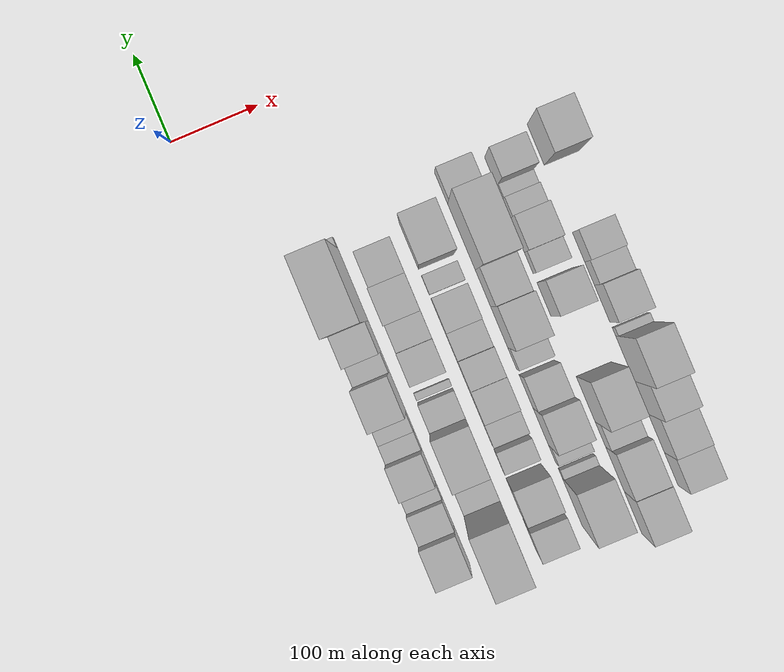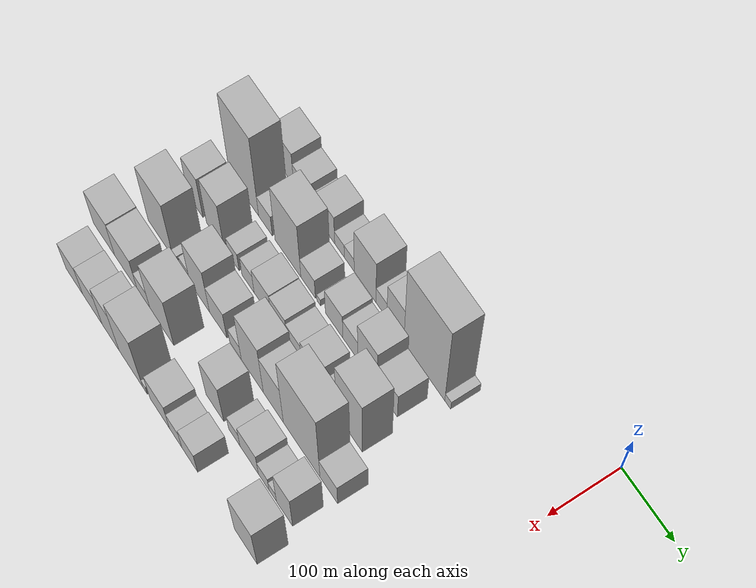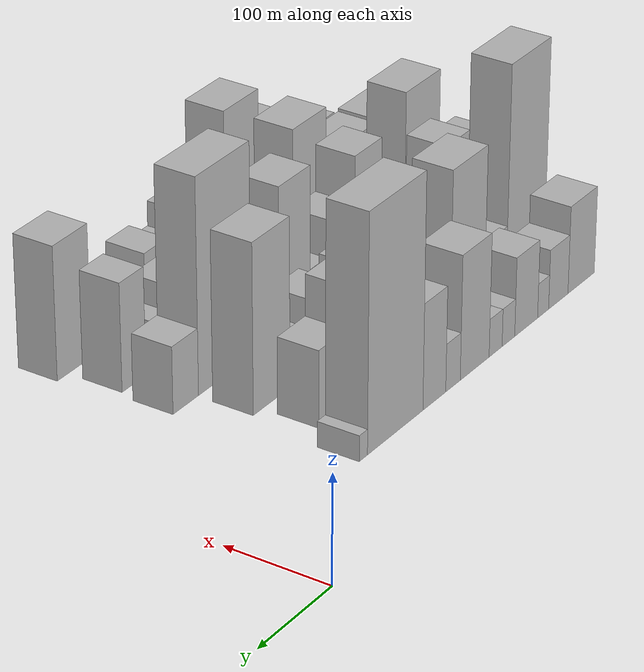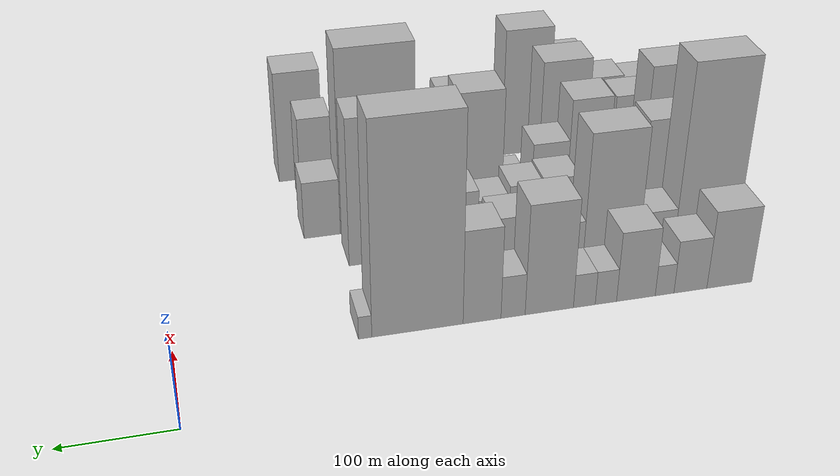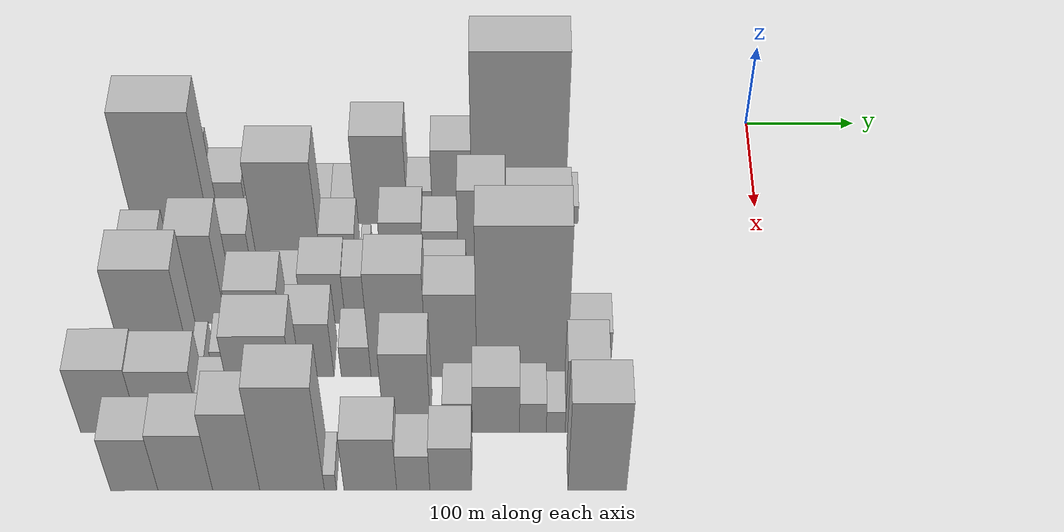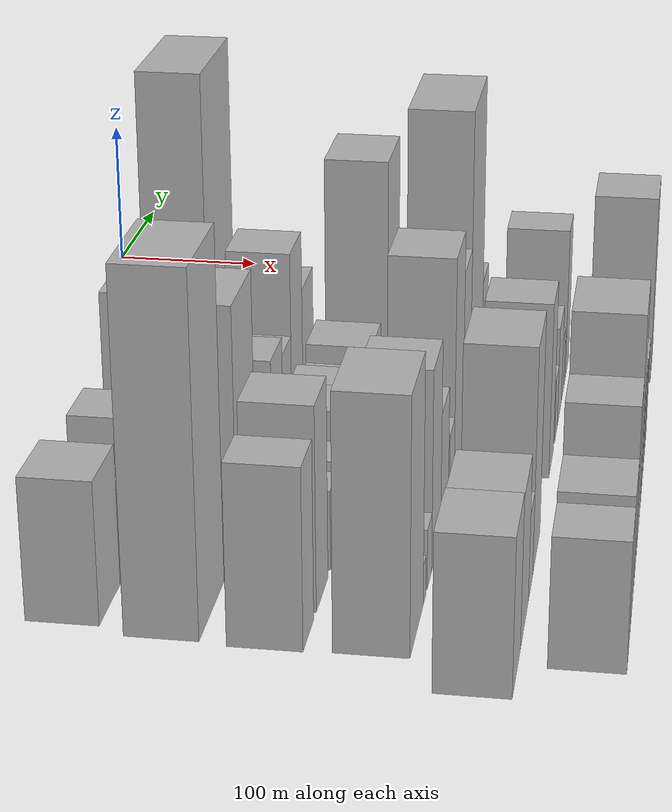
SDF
<sdf version="1.6">
 <world name="default">
  <model name="building_7">
   <static>1</static>
   <pose>100.0000 -510.2132 0 0.000000 0.000000 0.000000</pose>
   <link name="link">
    <pose>0 0 42.00 0 0 0</pose>
    <collision name="collision"><geometry><box><size>40.0000 44.9282 84.0000</size></box></geometry></collision>
    <visual name="visual">
     <cast_shadows>0</cast_shadows>
     <geometry><box><size>40.0000 44.9282 84.0000</size></box></geometry>
     <material>
      <script>
       <uri>model://HANNAS_wall/materials/scripts</uri>
       <uri>model://HANNAS_wall/materials/textures</uri>
       <name>vrc/HANNAS_wall</name>
      </script>
     </material>
    </visual>
   </link>
  </model>
  <model name="building_8">
   <static>1</static>
   <pose>100.0000 -471.4788 0 0.000000 0.000000 0.000000</pose>
   <link name="link">
    <pose>0 0 28.50 0 0 0</pose>
    <collision name="collision"><geometry><box><size>40.0000 32.5408 57.0000</size></box></geometry></collision>
    <visual name="visual">
     <cast_shadows>0</cast_shadows>
     <geometry><box><size>40.0000 32.5408 57.0000</size></box></geometry>
     <material>
      <script>
       <uri>model://HANNAS_wall/materials/scripts</uri>
       <uri>model://HANNAS_wall/materials/textures</uri>
       <name>vrc/HANNAS_wall</name>
      </script>
     </material>
    </visual>
   </link>
  </model>
  <model name="building_9">
   <static>1</static>
   <pose>100.0000 -446.0469 0 0.000000 0.000000 0.000000</pose>
   <link name="link">
    <pose>0 0 16.50 0 0 0</pose>
    <collision name="collision"><geometry><box><size>40.0000 18.3229 33.0000</size></box></geometry></collision>
    <visual name="visual">
     <cast_shadows>0</cast_shadows>
     <geometry><box><size>40.0000 18.3229 33.0000</size></box></geometry>
     <material>
      <script>
       <uri>model://HANNAS_wall/materials/scripts</uri>
       <uri>model://HANNAS_wall/materials/textures</uri>
       <name>vrc/HANNAS_wall</name>
      </script>
     </material>
    </visual>
   </link>
  </model>
  <model name="building_10">
   <static>1</static>
   <pose>100.0000 -418.1166 0 0.000000 0.000000 0.000000</pose>
   <link name="link">
    <pose>0 0 37.50 0 0 0</pose>
    <collision name="collision"><geometry><box><size>40.0000 37.5377 75.0000</size></box></geometry></collision>
    <visual name="visual">
     <cast_shadows>0</cast_shadows>
     <geometry><box><size>40.0000 37.5377 75.0000</size></box></geometry>
     <material>
      <script>
       <uri>model://HANNAS_wall/materials/scripts</uri>
       <uri>model://HANNAS_wall/materials/textures</uri>
       <name>vrc/HANNAS_wall</name>
      </script>
     </material>
    </visual>
   </link>
  </model>
  <model name="building_11">
   <static>1</static>
   <pose>100.0000 -389.1185 0 0.000000 0.000000 0.000000</pose>
   <link name="link">
    <pose>0 0 18.00 0 0 0</pose>
    <collision name="collision"><geometry><box><size>40.0000 20.4583 36.0000</size></box></geometry></collision>
    <visual name="visual">
     <cast_shadows>0</cast_shadows>
     <geometry><box><size>40.0000 20.4583 36.0000</size></box></geometry>
     <material>
      <script>
       <uri>model://HANNAS_wall/materials/scripts</uri>
       <uri>model://HANNAS_wall/materials/textures</uri>
       <name>vrc/HANNAS_wall</name>
      </script>
     </material>
    </visual>
   </link>
  </model>
  <model name="building_12">
   <static>1</static>
   <pose>100.0000 -368.4533 0 0.000000 0.000000 0.000000</pose>
   <link name="link">
    <pose>0 0 18.00 0 0 0</pose>
    <collision name="collision"><geometry><box><size>40.0000 20.8721 36.0000</size></box></geometry></collision>
    <visual name="visual">
     <cast_shadows>0</cast_shadows>
     <geometry><box><size>40.0000 20.8721 36.0000</size></box></geometry>
     <material>
      <script>
       <uri>model://HANNAS_wall/materials/scripts</uri>
       <uri>model://HANNAS_wall/materials/textures</uri>
       <name>vrc/HANNAS_wall</name>
      </script>
     </material>
    </visual>
   </link>
  </model>
  <model name="building_13">
   <static>1</static>
   <pose>100.0000 -335.2118 0 0.000000 0.000000 0.000000</pose>
   <link name="link">
    <pose>0 0 58.50 0 0 0</pose>
    <collision name="collision"><geometry><box><size>40.0000 45.6110 117.0000</size></box></geometry></collision>
    <visual name="visual">
     <cast_shadows>0</cast_shadows>
     <geometry><box><size>40.0000 45.6110 117.0000</size></box></geometry>
     <material>
      <script>
       <uri>model://HANNAS_wall/materials/scripts</uri>
       <uri>model://HANNAS_wall/materials/textures</uri>
       <name>vrc/HANNAS_wall</name>
      </script>
     </material>
    </visual>
   </link>
  </model>
  <model name="building_14">
   <static>1</static>
   <pose>100.0000 -301.1327 0 0.000000 0.000000 0.000000</pose>
   <link name="link">
    <pose>0 0 22.50 0 0 0</pose>
    <collision name="collision"><geometry><box><size>40.0000 22.5473 45.0000</size></box></geometry></collision>
    <visual name="visual">
     <cast_shadows>0</cast_shadows>
     <geometry><box><size>40.0000 22.5473 45.0000</size></box></geometry>
     <material>
      <script>
       <uri>model://HANNAS_wall/materials/scripts</uri>
       <uri>model://HANNAS_wall/materials/textures</uri>
       <name>vrc/HANNAS_wall</name>
      </script>
     </material>
    </visual>
   </link>
  </model>
  <model name="building_15">
   <static>1</static>
   <pose>100.0000 -272.3482 0 0.000000 0.000000 0.000000</pose>
   <link name="link">
    <pose>0 0 49.50 0 0 0</pose>
    <collision name="collision"><geometry><box><size>40.0000 35.0216 99.0000</size></box></geometry></collision>
    <visual name="visual">
     <cast_shadows>0</cast_shadows>
     <geometry><box><size>40.0000 35.0216 99.0000</size></box></geometry>
     <material>
      <script>
       <uri>model://HANNAS_wall/materials/scripts</uri>
       <uri>model://HANNAS_wall/materials/textures</uri>
       <name>vrc/HANNAS_wall</name>
      </script>
     </material>
    </visual>
   </link>
  </model>
  <model name="building_16">
   <static>1</static>
   <pose>100.0000 -213.4402 0 0.000000 0.000000 0.000000</pose>
   <link name="link">
    <pose>0 0 109.50 0 0 0</pose>
    <collision name="collision"><geometry><box><size>40.0000 82.7944 219.0000</size></box></geometry></collision>
    <visual name="visual">
     <cast_shadows>0</cast_shadows>
     <geometry><box><size>40.0000 82.7944 219.0000</size></box></geometry>
     <material>
      <script>
       <uri>model://HANNAS_wall/materials/scripts</uri>
       <uri>model://HANNAS_wall/materials/textures</uri>
       <name>vrc/HANNAS_wall</name>
      </script>
     </material>
    </visual>
   </link>
  </model>
  <model name="building_17">
   <static>1</static>
   <pose>100.0000 -166.0867 0 0.000000 0.000000 0.000000</pose>
   <link name="link">
    <pose>0 0 12.00 0 0 0</pose>
    <collision name="collision"><geometry><box><size>40.0000 11.9127 24.0000</size></box></geometry></collision>
    <visual name="visual">
     <cast_shadows>0</cast_shadows>
     <geometry><box><size>40.0000 11.9127 24.0000</size></box></geometry>
     <material>
      <script>
       <uri>model://HANNAS_wall/materials/scripts</uri>
       <uri>model://HANNAS_wall/materials/textures</uri>
       <name>vrc/HANNAS_wall</name>
      </script>
     </material>
    </visual>
   </link>
  </model>
  <model name="building_61">
   <static>1</static>
   <pose>155.0000 -508.8457 0 0.000000 0.000000 0.000000</pose>
   <link name="link">
    <pose>0 0 103.50 0 0 0</pose>
    <collision name="collision"><geometry><box><size>40.0000 64.2431 207.0000</size></box></geometry></collision>
    <visual name="visual">
     <cast_shadows>0</cast_shadows>
     <geometry><box><size>40.0000 64.2431 207.0000</size></box></geometry>
     <material>
      <script>
       <uri>model://HANNAS_wall/materials/scripts</uri>
       <uri>model://HANNAS_wall/materials/textures</uri>
       <name>vrc/HANNAS_wall</name>
      </script>
     </material>
    </visual>
   </link>
  </model>
  <model name="building_62">
   <static>1</static>
   <pose>155.0000 -461.8605 0 0.000000 0.000000 0.000000</pose>
   <link name="link">
    <pose>0 0 27.00 0 0 0</pose>
    <collision name="collision"><geometry><box><size>40.0000 29.7274 54.0000</size></box></geometry></collision>
    <visual name="visual">
     <cast_shadows>0</cast_shadows>
     <geometry><box><size>40.0000 29.7274 54.0000</size></box></geometry>
     <material>
      <script>
       <uri>model://HANNAS_wall/materials/scripts</uri>
       <uri>model://HANNAS_wall/materials/textures</uri>
       <name>vrc/HANNAS_wall</name>
      </script>
     </material>
    </visual>
   </link>
  </model>
  <model name="building_63">
   <static>1</static>
   <pose>155.0000 -413.3014 0 0.000000 0.000000 0.000000</pose>
   <link name="link">
    <pose>0 0 73.50 0 0 0</pose>
    <collision name="collision"><geometry><box><size>40.0000 55.3907 147.0000</size></box></geometry></collision>
    <visual name="visual">
     <cast_shadows>0</cast_shadows>
     <geometry><box><size>40.0000 55.3907 147.0000</size></box></geometry>
     <material>
      <script>
       <uri>model://HANNAS_wall/materials/scripts</uri>
       <uri>model://HANNAS_wall/materials/textures</uri>
       <name>vrc/HANNAS_wall</name>
      </script>
     </material>
    </visual>
   </link>
  </model>
  <model name="building_64">
   <static>1</static>
   <pose>155.0000 -370.1292 0 0.000000 0.000000 0.000000</pose>
   <link name="link">
    <pose>0 0 27.00 0 0 0</pose>
    <collision name="collision"><geometry><box><size>40.0000 30.9537 54.0000</size></box></geometry></collision>
    <visual name="visual">
     <cast_shadows>0</cast_shadows>
     <geometry><box><size>40.0000 30.9537 54.0000</size></box></geometry>
     <material>
      <script>
       <uri>model://HANNAS_wall/materials/scripts</uri>
       <uri>model://HANNAS_wall/materials/textures</uri>
       <name>vrc/HANNAS_wall</name>
      </script>
     </material>
    </visual>
   </link>
  </model>
  <model name="building_65">
   <static>1</static>
   <pose>155.0000 -347.6323 0 0.000000 0.000000 0.000000</pose>
   <link name="link">
    <pose>0 0 9.00 0 0 0</pose>
    <collision name="collision"><geometry><box><size>40.0000 8.0401 18.0000</size></box></geometry></collision>
    <visual name="visual">
     <cast_shadows>0</cast_shadows>
     <geometry><box><size>40.0000 8.0401 18.0000</size></box></geometry>
     <material>
      <script>
       <uri>model://HANNAS_wall/materials/scripts</uri>
       <uri>model://HANNAS_wall/materials/textures</uri>
       <name>vrc/HANNAS_wall</name>
      </script>
     </material>
    </visual>
   </link>
  </model>
  <model name="building_66">
   <static>1</static>
   <pose>155.0000 -315.2518 0 0.000000 0.000000 0.000000</pose>
   <link name="link">
    <pose>0 0 34.50 0 0 0</pose>
    <collision name="collision"><geometry><box><size>40.0000 36.7208 69.0000</size></box></geometry></collision>
    <visual name="visual">
     <cast_shadows>0</cast_shadows>
     <geometry><box><size>40.0000 36.7208 69.0000</size></box></geometry>
     <material>
      <script>
       <uri>model://HANNAS_wall/materials/scripts</uri>
       <uri>model://HANNAS_wall/materials/textures</uri>
       <name>vrc/HANNAS_wall</name>
      </script>
     </material>
    </visual>
   </link>
  </model>
  <model name="building_67">
   <static>1</static>
   <pose>155.0000 -281.4649 0 0.000000 0.000000 0.000000</pose>
   <link name="link">
    <pose>0 0 28.50 0 0 0</pose>
    <collision name="collision"><geometry><box><size>40.0000 30.8529 57.0000</size></box></geometry></collision>
    <visual name="visual">
     <cast_shadows>0</cast_shadows>
     <geometry><box><size>40.0000 30.8529 57.0000</size></box></geometry>
     <material>
      <script>
       <uri>model://HANNAS_wall/materials/scripts</uri>
       <uri>model://HANNAS_wall/materials/textures</uri>
       <name>vrc/HANNAS_wall</name>
      </script>
     </material>
    </visual>
   </link>
  </model>
  <model name="building_68">
   <static>1</static>
   <pose>155.0000 -245.8051 0 0.000000 0.000000 0.000000</pose>
   <link name="link">
    <pose>0 0 55.50 0 0 0</pose>
    <collision name="collision"><geometry><box><size>40.0000 40.4668 111.0000</size></box></geometry></collision>
    <visual name="visual">
     <cast_shadows>0</cast_shadows>
     <geometry><box><size>40.0000 40.4668 111.0000</size></box></geometry>
     <material>
      <script>
       <uri>model://HANNAS_wall/materials/scripts</uri>
       <uri>model://HANNAS_wall/materials/textures</uri>
       <name>vrc/HANNAS_wall</name>
      </script>
     </material>
    </visual>
   </link>
  </model>
  <model name="building_69">
   <static>1</static>
   <pose>155.0000 -205.2979 0 0.000000 0.000000 0.000000</pose>
   <link name="link">
    <pose>0 0 36.00 0 0 0</pose>
    <collision name="collision"><geometry><box><size>40.0000 40.5476 72.0000</size></box></geometry></collision>
    <visual name="visual">
     <cast_shadows>0</cast_shadows>
     <geometry><box><size>40.0000 40.5476 72.0000</size></box></geometry>
     <material>
      <script>
       <uri>model://HANNAS_wall/materials/scripts</uri>
       <uri>model://HANNAS_wall/materials/textures</uri>
       <name>vrc/HANNAS_wall</name>
      </script>
     </material>
    </visual>
   </link>
  </model>
  <model name="building_109">
   <static>1</static>
   <pose>210.0000 -527.1271 0 0.000000 0.000000 0.000000</pose>
   <link name="link">
    <pose>0 0 52.50 0 0 0</pose>
    <collision name="collision"><geometry><box><size>40.0000 32.8717 105.0000</size></box></geometry></collision>
    <visual name="visual">
     <cast_shadows>0</cast_shadows>
     <geometry><box><size>40.0000 32.8717 105.0000</size></box></geometry>
     <material>
      <script>
       <uri>model://HANNAS_wall/materials/scripts</uri>
       <uri>model://HANNAS_wall/materials/textures</uri>
       <name>vrc/HANNAS_wall</name>
      </script>
     </material>
    </visual>
   </link>
  </model>
  <model name="building_110">
   <static>1</static>
   <pose>210.0000 -483.5095 0 0.000000 0.000000 0.000000</pose>
   <link name="link">
    <pose>0 0 60.00 0 0 0</pose>
    <collision name="collision"><geometry><box><size>40.0000 38.3635 120.0000</size></box></geometry></collision>
    <visual name="visual">
     <cast_shadows>0</cast_shadows>
     <geometry><box><size>40.0000 38.3635 120.0000</size></box></geometry>
     <material>
      <script>
       <uri>model://HANNAS_wall/materials/scripts</uri>
       <uri>model://HANNAS_wall/materials/textures</uri>
       <name>vrc/HANNAS_wall</name>
      </script>
     </material>
    </visual>
   </link>
  </model>
  <model name="building_111">
   <static>1</static>
   <pose>210.0000 -443.2050 0 0.000000 0.000000 0.000000</pose>
   <link name="link">
    <pose>0 0 24.00 0 0 0</pose>
    <collision name="collision"><geometry><box><size>40.0000 24.2456 48.0000</size></box></geometry></collision>
    <visual name="visual">
     <cast_shadows>0</cast_shadows>
     <geometry><box><size>40.0000 24.2456 48.0000</size></box></geometry>
     <material>
      <script>
       <uri>model://HANNAS_wall/materials/scripts</uri>
       <uri>model://HANNAS_wall/materials/textures</uri>
       <name>vrc/HANNAS_wall</name>
      </script>
     </material>
    </visual>
   </link>
  </model>
  <model name="building_112">
   <static>1</static>
   <pose>210.0000 -411.8444 0 0.000000 0.000000 0.000000</pose>
   <link name="link">
    <pose>0 0 25.50 0 0 0</pose>
    <collision name="collision"><geometry><box><size>40.0000 26.4756 51.0000</size></box></geometry></collision>
    <visual name="visual">
     <cast_shadows>0</cast_shadows>
     <geometry><box><size>40.0000 26.4756 51.0000</size></box></geometry>
     <material>
      <script>
       <uri>model://HANNAS_wall/materials/scripts</uri>
       <uri>model://HANNAS_wall/materials/textures</uri>
       <name>vrc/HANNAS_wall</name>
      </script>
     </material>
    </visual>
   </link>
  </model>
  <model name="building_113">
   <static>1</static>
   <pose>210.0000 -380.3695 0 0.000000 0.000000 0.000000</pose>
   <link name="link">
    <pose>0 0 34.50 0 0 0</pose>
    <collision name="collision"><geometry><box><size>40.0000 36.4743 69.0000</size></box></geometry></collision>
    <visual name="visual">
     <cast_shadows>0</cast_shadows>
     <geometry><box><size>40.0000 36.4743 69.0000</size></box></geometry>
     <material>
      <script>
       <uri>model://HANNAS_wall/materials/scripts</uri>
       <uri>model://HANNAS_wall/materials/textures</uri>
       <name>vrc/HANNAS_wall</name>
      </script>
     </material>
    </visual>
   </link>
  </model>
  <model name="building_114">
   <static>1</static>
   <pose>210.0000 -345.5111 0 0.000000 0.000000 0.000000</pose>
   <link name="link">
    <pose>0 0 33.00 0 0 0</pose>
    <collision name="collision"><geometry><box><size>40.0000 33.2425 66.0000</size></box></geometry></collision>
    <visual name="visual">
     <cast_shadows>0</cast_shadows>
     <geometry><box><size>40.0000 33.2425 66.0000</size></box></geometry>
     <material>
      <script>
       <uri>model://HANNAS_wall/materials/scripts</uri>
       <uri>model://HANNAS_wall/materials/textures</uri>
       <name>vrc/HANNAS_wall</name>
      </script>
     </material>
    </visual>
   </link>
  </model>
  <model name="building_115">
   <static>1</static>
   <pose>210.0000 -313.5242 0 0.000000 0.000000 0.000000</pose>
   <link name="link">
    <pose>0 0 27.00 0 0 0</pose>
    <collision name="collision"><geometry><box><size>40.0000 30.7312 54.0000</size></box></geometry></collision>
    <visual name="visual">
     <cast_shadows>0</cast_shadows>
     <geometry><box><size>40.0000 30.7312 54.0000</size></box></geometry>
     <material>
      <script>
       <uri>model://HANNAS_wall/materials/scripts</uri>
       <uri>model://HANNAS_wall/materials/textures</uri>
       <name>vrc/HANNAS_wall</name>
      </script>
     </material>
    </visual>
   </link>
  </model>
  <model name="building_116">
   <static>1</static>
   <pose>210.0000 -278.5037 0 0.000000 0.000000 0.000000</pose>
   <link name="link">
    <pose>0 0 33.00 0 0 0</pose>
    <collision name="collision"><geometry><box><size>40.0000 39.3099 66.0000</size></box></geometry></collision>
    <visual name="visual">
     <cast_shadows>0</cast_shadows>
     <geometry><box><size>40.0000 39.3099 66.0000</size></box></geometry>
     <material>
      <script>
       <uri>model://HANNAS_wall/materials/scripts</uri>
       <uri>model://HANNAS_wall/materials/textures</uri>
       <name>vrc/HANNAS_wall</name>
      </script>
     </material>
    </visual>
   </link>
  </model>
  <model name="building_117">
   <static>1</static>
   <pose>210.0000 -244.0748 0 0.000000 0.000000 0.000000</pose>
   <link name="link">
    <pose>0 0 21.00 0 0 0</pose>
    <collision name="collision"><geometry><box><size>40.0000 21.5480 42.0000</size></box></geometry></collision>
    <visual name="visual">
     <cast_shadows>0</cast_shadows>
     <geometry><box><size>40.0000 21.5480 42.0000</size></box></geometry>
     <material>
      <script>
       <uri>model://HANNAS_wall/materials/scripts</uri>
       <uri>model://HANNAS_wall/materials/textures</uri>
       <name>vrc/HANNAS_wall</name>
      </script>
     </material>
    </visual>
   </link>
  </model>
  <model name="building_118">
   <static>1</static>
   <pose>210.0000 -198.7493 0 0.000000 0.000000 0.000000</pose>
   <link name="link">
    <pose>0 0 79.50 0 0 0</pose>
    <collision name="collision"><geometry><box><size>40.0000 53.1029 159.0000</size></box></geometry></collision>
    <visual name="visual">
     <cast_shadows>0</cast_shadows>
     <geometry><box><size>40.0000 53.1029 159.0000</size></box></geometry>
     <material>
      <script>
       <uri>model://HANNAS_wall/materials/scripts</uri>
       <uri>model://HANNAS_wall/materials/textures</uri>
       <name>vrc/HANNAS_wall</name>
      </script>
     </material>
    </visual>
   </link>
  </model>
  <model name="building_165">
   <static>1</static>
   <pose>265.0000 -514.4767 0 0.000000 0.000000 0.000000</pose>
   <link name="link">
    <pose>0 0 73.50 0 0 0</pose>
    <collision name="collision"><geometry><box><size>40.0000 55.5013 147.0000</size></box></geometry></collision>
    <visual name="visual">
     <cast_shadows>0</cast_shadows>
     <geometry><box><size>40.0000 55.5013 147.0000</size></box></geometry>
     <material>
      <script>
       <uri>model://HANNAS_wall/materials/scripts</uri>
       <uri>model://HANNAS_wall/materials/textures</uri>
       <name>vrc/HANNAS_wall</name>
      </script>
     </material>
    </visual>
   </link>
  </model>
  <model name="building_166">
   <static>1</static>
   <pose>265.0000 -481.2892 0 0.000000 0.000000 0.000000</pose>
   <link name="link">
    <pose>0 0 12.00 0 0 0</pose>
    <collision name="collision"><geometry><box><size>40.0000 10.8736 24.0000</size></box></geometry></collision>
    <visual name="visual">
     <cast_shadows>0</cast_shadows>
     <geometry><box><size>40.0000 10.8736 24.0000</size></box></geometry>
     <material>
      <script>
       <uri>model://HANNAS_wall/materials/scripts</uri>
       <uri>model://HANNAS_wall/materials/textures</uri>
       <name>vrc/HANNAS_wall</name>
      </script>
     </material>
    </visual>
   </link>
  </model>
  <model name="building_167">
   <static>1</static>
   <pose>265.0000 -459.4296 0 0.000000 0.000000 0.000000</pose>
   <link name="link">
    <pose>0 0 18.00 0 0 0</pose>
    <collision name="collision"><geometry><box><size>40.0000 20.8456 36.0000</size></box></geometry></collision>
    <visual name="visual">
     <cast_shadows>0</cast_shadows>
     <geometry><box><size>40.0000 20.8456 36.0000</size></box></geometry>
     <material>
      <script>
       <uri>model://HANNAS_wall/materials/scripts</uri>
       <uri>model://HANNAS_wall/materials/textures</uri>
       <name>vrc/HANNAS_wall</name>
      </script>
     </material>
    </visual>
   </link>
  </model>
  <model name="building_168">
   <static>1</static>
   <pose>265.0000 -427.7121 0 0.000000 0.000000 0.000000</pose>
   <link name="link">
    <pose>0 0 60.00 0 0 0</pose>
    <collision name="collision"><geometry><box><size>40.0000 42.5895 120.0000</size></box></geometry></collision>
    <visual name="visual">
     <cast_shadows>0</cast_shadows>
     <geometry><box><size>40.0000 42.5895 120.0000</size></box></geometry>
     <material>
      <script>
       <uri>model://HANNAS_wall/materials/scripts</uri>
       <uri>model://HANNAS_wall/materials/textures</uri>
       <name>vrc/HANNAS_wall</name>
      </script>
     </material>
    </visual>
   </link>
  </model>
  <model name="building_169">
   <static>1</static>
   <pose>265.0000 -387.6341 0 0.000000 0.000000 0.000000</pose>
   <link name="link">
    <pose>0 0 37.50 0 0 0</pose>
    <collision name="collision"><geometry><box><size>40.0000 37.5665 75.0000</size></box></geometry></collision>
    <visual name="visual">
     <cast_shadows>0</cast_shadows>
     <geometry><box><size>40.0000 37.5665 75.0000</size></box></geometry>
     <material>
      <script>
       <uri>model://HANNAS_wall/materials/scripts</uri>
       <uri>model://HANNAS_wall/materials/textures</uri>
       <name>vrc/HANNAS_wall</name>
      </script>
     </material>
    </visual>
   </link>
  </model>
  <model name="building_170">
   <static>1</static>
   <pose>265.0000 -350.3621 0 0.000000 0.000000 0.000000</pose>
   <link name="link">
    <pose>0 0 21.00 0 0 0</pose>
    <collision name="collision"><geometry><box><size>40.0000 24.9775 42.0000</size></box></geometry></collision>
    <visual name="visual">
     <cast_shadows>0</cast_shadows>
     <geometry><box><size>40.0000 24.9775 42.0000</size></box></geometry>
     <material>
      <script>
       <uri>model://HANNAS_wall/materials/scripts</uri>
       <uri>model://HANNAS_wall/materials/textures</uri>
       <name>vrc/HANNAS_wall</name>
      </script>
     </material>
    </visual>
   </link>
  </model>
  <model name="building_171">
   <static>1</static>
   <pose>265.0000 -314.4730 0 0.000000 0.000000 0.000000</pose>
   <link name="link">
    <pose>0 0 70.50 0 0 0</pose>
    <collision name="collision"><geometry><box><size>40.0000 46.8007 141.0000</size></box></geometry></collision>
    <visual name="visual">
     <cast_shadows>0</cast_shadows>
     <geometry><box><size>40.0000 46.8007 141.0000</size></box></geometry>
     <material>
      <script>
       <uri>model://HANNAS_wall/materials/scripts</uri>
       <uri>model://HANNAS_wall/materials/textures</uri>
       <name>vrc/HANNAS_wall</name>
      </script>
     </material>
    </visual>
   </link>
  </model>
  <model name="building_172">
   <static>1</static>
   <pose>265.0000 -270.1294 0 0.000000 0.000000 0.000000</pose>
   <link name="link">
    <pose>0 0 57.00 0 0 0</pose>
    <collision name="collision"><geometry><box><size>40.0000 41.8864 114.0000</size></box></geometry></collision>
    <visual name="visual">
     <cast_shadows>0</cast_shadows>
     <geometry><box><size>40.0000 41.8864 114.0000</size></box></geometry>
     <material>
      <script>
       <uri>model://HANNAS_wall/materials/scripts</uri>
       <uri>model://HANNAS_wall/materials/textures</uri>
       <name>vrc/HANNAS_wall</name>
      </script>
     </material>
    </visual>
   </link>
  </model>
  <model name="building_173">
   <static>1</static>
   <pose>265.0000 -211.3545 0 0.000000 0.000000 0.000000</pose>
   <link name="link">
    <pose>0 0 100.50 0 0 0</pose>
    <collision name="collision"><geometry><box><size>40.0000 75.6633 201.0000</size></box></geometry></collision>
    <visual name="visual">
     <cast_shadows>0</cast_shadows>
     <geometry><box><size>40.0000 75.6633 201.0000</size></box></geometry>
     <material>
      <script>
       <uri>model://HANNAS_wall/materials/scripts</uri>
       <uri>model://HANNAS_wall/materials/textures</uri>
       <name>vrc/HANNAS_wall</name>
      </script>
     </material>
    </visual>
   </link>
  </model>
  <model name="building_174">
   <static>1</static>
   <pose>265.0000 -155.5771 0 0.000000 0.000000 0.000000</pose>
   <link name="link">
    <pose>0 0 31.50 0 0 0</pose>
    <collision name="collision"><geometry><box><size>40.0000 35.8916 63.0000</size></box></geometry></collision>
    <visual name="visual">
     <cast_shadows>0</cast_shadows>
     <geometry><box><size>40.0000 35.8916 63.0000</size></box></geometry>
     <material>
      <script>
       <uri>model://HANNAS_wall/materials/scripts</uri>
       <uri>model://HANNAS_wall/materials/textures</uri>
       <name>vrc/HANNAS_wall</name>
      </script>
     </material>
    </visual>
   </link>
  </model>
  <model name="building_212">
   <static>1</static>
   <pose>320.0000 -549.5898 0 0.000000 0.000000 0.000000</pose>
   <link name="link">
    <pose>0 0 45.00 0 0 0</pose>
    <collision name="collision"><geometry><box><size>40.0000 48.4234 90.0000</size></box></geometry></collision>
    <visual name="visual">
     <cast_shadows>0</cast_shadows>
     <geometry><box><size>40.0000 48.4234 90.0000</size></box></geometry>
     <material>
      <script>
       <uri>model://HANNAS_wall/materials/scripts</uri>
       <uri>model://HANNAS_wall/materials/textures</uri>
       <name>vrc/HANNAS_wall</name>
      </script>
     </material>
    </visual>
   </link>
  </model>
  <model name="building_213">
   <static>1</static>
   <pose>320.0000 -499.9840 0 0.000000 0.000000 0.000000</pose>
   <link name="link">
    <pose>0 0 43.50 0 0 0</pose>
    <collision name="collision"><geometry><box><size>40.0000 50.7882 87.0000</size></box></geometry></collision>
    <visual name="visual">
     <cast_shadows>0</cast_shadows>
     <geometry><box><size>40.0000 50.7882 87.0000</size></box></geometry>
     <material>
      <script>
       <uri>model://HANNAS_wall/materials/scripts</uri>
       <uri>model://HANNAS_wall/materials/textures</uri>
       <name>vrc/HANNAS_wall</name>
      </script>
     </material>
    </visual>
   </link>
  </model>
  <model name="building_214">
   <static>1</static>
   <pose>320.0000 -460.1326 0 0.000000 0.000000 0.000000</pose>
   <link name="link">
    <pose>0 0 25.50 0 0 0</pose>
    <collision name="collision"><geometry><box><size>40.0000 28.9145 51.0000</size></box></geometry></collision>
    <visual name="visual">
     <cast_shadows>0</cast_shadows>
     <geometry><box><size>40.0000 28.9145 51.0000</size></box></geometry>
     <material>
      <script>
       <uri>model://HANNAS_wall/materials/scripts</uri>
       <uri>model://HANNAS_wall/materials/textures</uri>
       <name>vrc/HANNAS_wall</name>
      </script>
     </material>
    </visual>
   </link>
  </model>
  <model name="building_215">
   <static>1</static>
   <pose>320.0000 -419.7920 0 0.000000 0.000000 0.000000</pose>
   <link name="link">
    <pose>0 0 67.50 0 0 0</pose>
    <collision name="collision"><geometry><box><size>40.0000 51.7668 135.0000</size></box></geometry></collision>
    <visual name="visual">
     <cast_shadows>0</cast_shadows>
     <geometry><box><size>40.0000 51.7668 135.0000</size></box></geometry>
     <material>
      <script>
       <uri>model://HANNAS_wall/materials/scripts</uri>
       <uri>model://HANNAS_wall/materials/textures</uri>
       <name>vrc/HANNAS_wall</name>
      </script>
     </material>
    </visual>
   </link>
  </model>
  <model name="building_216">
   <static>1</static>
   <pose>320.0000 -305.5341 0 0.000000 0.000000 0.000000</pose>
   <link name="link">
    <pose>0 0 55.50 0 0 0</pose>
    <collision name="collision"><geometry><box><size>40.0000 38.2497 111.0000</size></box></geometry></collision>
    <visual name="visual">
     <cast_shadows>0</cast_shadows>
     <geometry><box><size>40.0000 38.2497 111.0000</size></box></geometry>
     <material>
      <script>
       <uri>model://HANNAS_wall/materials/scripts</uri>
       <uri>model://HANNAS_wall/materials/textures</uri>
       <name>vrc/HANNAS_wall</name>
      </script>
     </material>
    </visual>
   </link>
  </model>
  <model name="building_217">
   <static>1</static>
   <pose>320.0000 -264.3094 0 0.000000 0.000000 0.000000</pose>
   <link name="link">
    <pose>0 0 21.00 0 0 0</pose>
    <collision name="collision"><geometry><box><size>40.0000 24.1997 42.0000</size></box></geometry></collision>
    <visual name="visual">
     <cast_shadows>0</cast_shadows>
     <geometry><box><size>40.0000 24.1997 42.0000</size></box></geometry>
     <material>
      <script>
       <uri>model://HANNAS_wall/materials/scripts</uri>
       <uri>model://HANNAS_wall/materials/textures</uri>
       <name>vrc/HANNAS_wall</name>
      </script>
     </material>
    </visual>
   </link>
  </model>
  <model name="building_218">
   <static>1</static>
   <pose>320.0000 -232.9948 0 0.000000 0.000000 0.000000</pose>
   <link name="link">
    <pose>0 0 33.00 0 0 0</pose>
    <collision name="collision"><geometry><box><size>40.0000 38.4295 66.0000</size></box></geometry></collision>
    <visual name="visual">
     <cast_shadows>0</cast_shadows>
     <geometry><box><size>40.0000 38.4295 66.0000</size></box></geometry>
     <material>
      <script>
       <uri>model://HANNAS_wall/materials/scripts</uri>
       <uri>model://HANNAS_wall/materials/textures</uri>
       <name>vrc/HANNAS_wall</name>
      </script>
     </material>
    </visual>
   </link>
  </model>
  <model name="building_219">
   <static>1</static>
   <pose>320.0000 -202.8050 0 0.000000 0.000000 0.000000</pose>
   <link name="link">
    <pose>0 0 21.00 0 0 0</pose>
    <collision name="collision"><geometry><box><size>40.0000 21.9502 42.0000</size></box></geometry></collision>
    <visual name="visual">
     <cast_shadows>0</cast_shadows>
     <geometry><box><size>40.0000 21.9502 42.0000</size></box></geometry>
     <material>
      <script>
       <uri>model://HANNAS_wall/materials/scripts</uri>
       <uri>model://HANNAS_wall/materials/textures</uri>
       <name>vrc/HANNAS_wall</name>
      </script>
     </material>
    </visual>
   </link>
  </model>
  <model name="building_220">
   <static>1</static>
   <pose>320.0000 -184.1063 0 0.000000 0.000000 0.000000</pose>
   <link name="link">
    <pose>0 0 15.00 0 0 0</pose>
    <collision name="collision"><geometry><box><size>40.0000 15.4472 30.0000</size></box></geometry></collision>
    <visual name="visual">
     <cast_shadows>0</cast_shadows>
     <geometry><box><size>40.0000 15.4472 30.0000</size></box></geometry>
     <material>
      <script>
       <uri>model://HANNAS_wall/materials/scripts</uri>
       <uri>model://HANNAS_wall/materials/textures</uri>
       <name>vrc/HANNAS_wall</name>
      </script>
     </material>
    </visual>
   </link>
  </model>
  <model name="building_221">
   <static>1</static>
   <pose>320.0000 -159.7665 0 0.000000 0.000000 0.000000</pose>
   <link name="link">
    <pose>0 0 51.00 0 0 0</pose>
    <collision name="collision"><geometry><box><size>40.0000 33.2323 102.0000</size></box></geometry></collision>
    <visual name="visual">
     <cast_shadows>0</cast_shadows>
     <geometry><box><size>40.0000 33.2323 102.0000</size></box></geometry>
     <material>
      <script>
       <uri>model://HANNAS_wall/materials/scripts</uri>
       <uri>model://HANNAS_wall/materials/textures</uri>
       <name>vrc/HANNAS_wall</name>
      </script>
     </material>
    </visual>
   </link>
  </model>
  <model name="building_259">
   <static>1</static>
   <pose>375.0000 -522.9317 0 0.000000 0.000000 0.000000</pose>
   <link name="link">
    <pose>0 0 37.50 0 0 0</pose>
    <collision name="collision"><geometry><box><size>40.0000 38.0080 75.0000</size></box></geometry></collision>
    <visual name="visual">
     <cast_shadows>0</cast_shadows>
     <geometry><box><size>40.0000 38.0080 75.0000</size></box></geometry>
     <material>
      <script>
       <uri>model://HANNAS_wall/materials/scripts</uri>
       <uri>model://HANNAS_wall/materials/textures</uri>
       <name>vrc/HANNAS_wall</name>
      </script>
     </material>
    </visual>
   </link>
  </model>
  <model name="building_260">
   <static>1</static>
   <pose>375.0000 -481.9937 0 0.000000 0.000000 0.000000</pose>
   <link name="link">
    <pose>0 0 40.50 0 0 0</pose>
    <collision name="collision"><geometry><box><size>40.0000 43.8681 81.0000</size></box></geometry></collision>
    <visual name="visual">
     <cast_shadows>0</cast_shadows>
     <geometry><box><size>40.0000 43.8681 81.0000</size></box></geometry>
     <material>
      <script>
       <uri>model://HANNAS_wall/materials/scripts</uri>
       <uri>model://HANNAS_wall/materials/textures</uri>
       <name>vrc/HANNAS_wall</name>
      </script>
     </material>
    </visual>
   </link>
  </model>
  <model name="building_261">
   <static>1</static>
   <pose>375.0000 -441.2021 0 0.000000 0.000000 0.000000</pose>
   <link name="link">
    <pose>0 0 55.50 0 0 0</pose>
    <collision name="collision"><geometry><box><size>40.0000 37.7150 111.0000</size></box></geometry></collision>
    <visual name="visual">
     <cast_shadows>0</cast_shadows>
     <geometry><box><size>40.0000 37.7150 111.0000</size></box></geometry>
     <material>
      <script>
       <uri>model://HANNAS_wall/materials/scripts</uri>
       <uri>model://HANNAS_wall/materials/textures</uri>
       <name>vrc/HANNAS_wall</name>
      </script>
     </material>
    </visual>
   </link>
  </model>
  <model name="building_262">
   <static>1</static>
   <pose>375.0000 -396.3873 0 0.000000 0.000000 0.000000</pose>
   <link name="link">
    <pose>0 0 73.50 0 0 0</pose>
    <collision name="collision"><geometry><box><size>40.0000 51.9145 147.0000</size></box></geometry></collision>
    <visual name="visual">
     <cast_shadows>0</cast_shadows>
     <geometry><box><size>40.0000 51.9145 147.0000</size></box></geometry>
     <material>
      <script>
       <uri>model://HANNAS_wall/materials/scripts</uri>
       <uri>model://HANNAS_wall/materials/textures</uri>
       <name>vrc/HANNAS_wall</name>
      </script>
     </material>
    </visual>
   </link>
  </model>
  <model name="building_263">
   <static>1</static>
   <pose>375.0000 -365.5734 0 0.000000 0.000000 0.000000</pose>
   <link name="link">
    <pose>0 0 12.00 0 0 0</pose>
    <collision name="collision"><geometry><box><size>40.0000 9.7133 24.0000</size></box></geometry></collision>
    <visual name="visual">
     <cast_shadows>0</cast_shadows>
     <geometry><box><size>40.0000 9.7133 24.0000</size></box></geometry>
     <material>
      <script>
       <uri>model://HANNAS_wall/materials/scripts</uri>
       <uri>model://HANNAS_wall/materials/textures</uri>
       <name>vrc/HANNAS_wall</name>
      </script>
     </material>
    </visual>
   </link>
  </model>
  <model name="building_264">
   <static>1</static>
   <pose>375.0000 -333.6302 0 0.000000 0.000000 0.000000</pose>
   <link name="link">
    <pose>0 0 37.50 0 0 0</pose>
    <collision name="collision"><geometry><box><size>40.0000 42.1732 75.0000</size></box></geometry></collision>
    <visual name="visual">
     <cast_shadows>0</cast_shadows>
     <geometry><box><size>40.0000 42.1732 75.0000</size></box></geometry>
     <material>
      <script>
       <uri>model://HANNAS_wall/materials/scripts</uri>
       <uri>model://HANNAS_wall/materials/textures</uri>
       <name>vrc/HANNAS_wall</name>
      </script>
     </material>
    </visual>
   </link>
  </model>
  <model name="building_265">
   <static>1</static>
   <pose>375.0000 -299.2388 0 0.000000 0.000000 0.000000</pose>
   <link name="link">
    <pose>0 0 25.50 0 0 0</pose>
    <collision name="collision"><geometry><box><size>40.0000 26.6095 51.0000</size></box></geometry></collision>
    <visual name="visual">
     <cast_shadows>0</cast_shadows>
     <geometry><box><size>40.0000 26.6095 51.0000</size></box></geometry>
     <material>
      <script>
       <uri>model://HANNAS_wall/materials/scripts</uri>
       <uri>model://HANNAS_wall/materials/textures</uri>
       <name>vrc/HANNAS_wall</name>
      </script>
     </material>
    </visual>
   </link>
  </model>
  <model name="building_266">
   <static>1</static>
   <pose>375.0000 -269.1002 0 0.000000 0.000000 0.000000</pose>
   <link name="link">
    <pose>0 0 31.50 0 0 0</pose>
    <collision name="collision"><geometry><box><size>40.0000 33.6676 63.0000</size></box></geometry></collision>
    <visual name="visual">
     <cast_shadows>0</cast_shadows>
     <geometry><box><size>40.0000 33.6676 63.0000</size></box></geometry>
     <material>
      <script>
       <uri>model://HANNAS_wall/materials/scripts</uri>
       <uri>model://HANNAS_wall/materials/textures</uri>
       <name>vrc/HANNAS_wall</name>
      </script>
     </material>
    </visual>
   </link>
  </model>
  <model name="building_267">
   <static>1</static>
   <pose>375.0000 -151.8089 0 0.000000 0.000000 0.000000</pose>
   <link name="link">
    <pose>0 0 63.00 0 0 0</pose>
    <collision name="collision"><geometry><box><size>40.0000 46.9717 126.0000</size></box></geometry></collision>
    <visual name="visual">
     <cast_shadows>0</cast_shadows>
     <geometry><box><size>40.0000 46.9717 126.0000</size></box></geometry>
     <material>
      <script>
       <uri>model://HANNAS_wall/materials/scripts</uri>
       <uri>model://HANNAS_wall/materials/textures</uri>
       <name>vrc/HANNAS_wall</name>
      </script>
     </material>
    </visual>
   </link>
  </model>
 </world>
</sdf>
